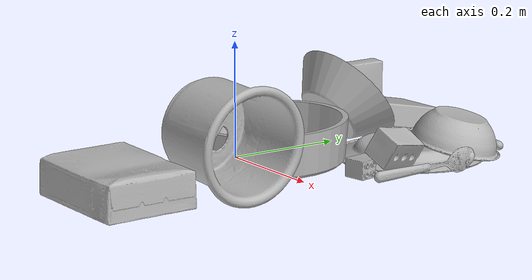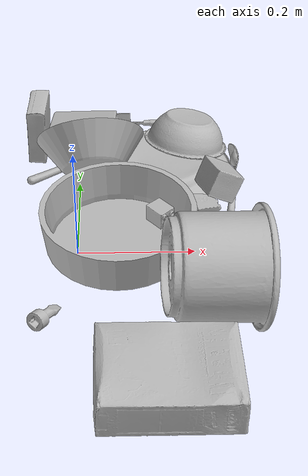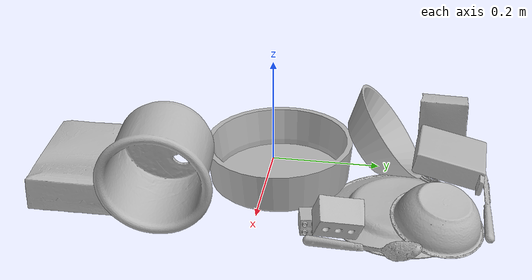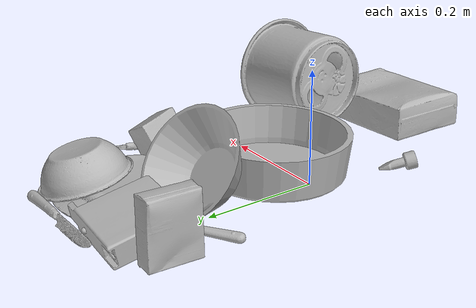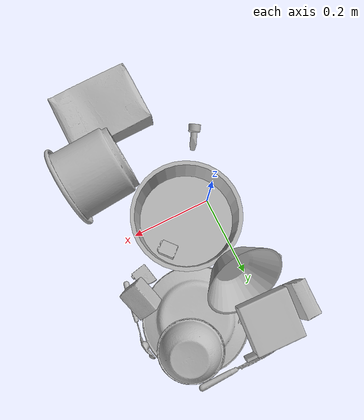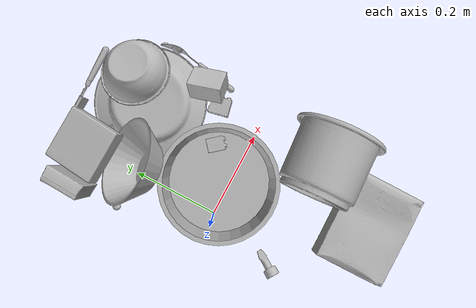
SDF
<sdf version="1.4">
  <world name="default">
    <light name="light1" type="point">
      <pose>0 0 1 0 0 0</pose>
      <diffuse>3 3 3 1</diffuse>
      <specular>3 3 3 1</specular>
    </light>
    <light name="light2" type="point">
      <pose>0 0.5 2 0 0 0</pose>
      <diffuse>1 1 1 1</diffuse>
      <specular>1 1 1 1</specular>
    </light>
    <light name="light3" type="point">
      <pose>0 0.5 2 0 0 0</pose>
      <diffuse>3 3 3 1</diffuse>
      <specular>3 3 3 1</specular>
    </light>
    <scene>
      <ambient>0.7 0.7 0.7</ambient>
    </scene>
    <model name="plate1">
      <link name="link_plate1">
        <collision name="default">
          <geometry>
            <mesh>
              <uri>model://pan_tefal/collision_meshes/collision.obj</uri>
              <scale>1.0 1.0 1.0</scale>
            </mesh>
          </geometry>
          <surface>
            <friction>
              <ode>
                <mu>0.5</mu>
                <mu2>0.5</mu2>
              </ode>
            </friction>
          <contact>
        <ode>
            <max_vel>0</max_vel>
            <min_depth>0.0001</min_depth>
            <kp>1e8</kp>
        </ode>
    </contact></surface>
        </collision>
        <visual name="default">
          <geometry>
            <mesh>
              <uri>model://pan_tefal/visual_meshes/visual.dae</uri>
              <scale>1.0 1.0 1.0</scale>
            </mesh>
          </geometry>
        </visual>
        <inertial>
          <mass>0.7050602436065674</mass>
          <pose>-0.00018002082651946694 3.279098018538207e-05 -0.008514933288097382 0.0008190340203057913 -0.0003301288692481796 -0.3318720847028622</pose>
          <inertia>
            <ixx>0.0048669963</ixx>
            <iyy>0.0048983735</iyy>
            <izz>0.008959204</izz>
            <ixy>0</ixy>
            <ixz>0</ixz>
            <iyz>0</iyz>
          </inertia>
        </inertial>
      </link>
      <pose>0.0700000450015068 0.022186564281582832 0.04150456190109253 0.002373753539338047 -0.02866517132073775 1.1102063727069282</pose>
    </model>
    <model name="plate2">
      <link name="link_plate2">
        <collision name="default">
          <geometry>
            <mesh>
              <uri>model://plate/collision_meshes/collision.obj</uri>
              <scale>1.0 1.0 1.0</scale>
            </mesh>
          </geometry>
          <surface>
            <friction>
              <ode>
                <mu>0.5</mu>
                <mu2>0.5</mu2>
              </ode>
            </friction>
          <contact>
        <ode>
            <max_vel>0</max_vel>
            <min_depth>0.0001</min_depth>
            <kp>1e8</kp>
        </ode>
    </contact></surface>
        </collision>
        <visual name="default">
          <geometry>
            <mesh>
              <uri>model://plate/visual_meshes/visual.dae</uri>
              <scale>1.0 1.0 1.0</scale>
            </mesh>
          </geometry>
        </visual>
        <inertial>
          <mass>0.2442774623632431</mass>
          <pose>-0.0006044568726792932 0.0002782584633678198 -0.0010561984963715076 0.0022187778178748897 -0.0032254919076997847 0.45261061169843664</pose>
          <inertia>
            <ixx>0.0011427345</ixx>
            <iyy>0.001131805</iyy>
            <izz>0.002235018</izz>
            <ixy>0</ixy>
            <ixz>0</ixz>
            <iyz>0</iyz>
          </inertia>
        </inertial>
      </link>
      <pose>0.15764230489730835 0.24875710904598236 0.013444468379020691 3.1412148881354875 -0.003317706827788829 3.1304350486531036</pose>
    </model>
    <model name="bowl1">
      <link name="link_bowl1">
        <collision name="default">
          <geometry>
            <mesh>
              <uri>model://bowl_a/collision_meshes/collision.obj</uri>
              <scale>1.0 1.0 1.0</scale>
            </mesh>
          </geometry>
          <surface>
            <friction>
              <ode>
                <mu>0.5</mu>
                <mu2>0.5</mu2>
              </ode>
            </friction>
          <contact>
        <ode>
            <max_vel>0</max_vel>
            <min_depth>0.0001</min_depth>
            <kp>1e8</kp>
        </ode>
    </contact></surface>
        </collision>
        <visual name="default">
          <geometry>
            <mesh>
              <uri>model://bowl_a/visual_meshes/visual.dae</uri>
              <scale>1.0 1.0 1.0</scale>
            </mesh>
          </geometry>
        </visual>
        <inertial>
          <mass>0.4025156497955322</mass>
          <pose>0.00027867371682077646 4.731032458948903e-05 -0.0013765298062935472 -0.00098054011869292 -0.0010938175729232503 -0.19123339485915475</pose>
          <inertia>
            <ixx>0.0011459808</ixx>
            <iyy>0.0011530165</iyy>
            <izz>0.0020381706</izz>
            <ixy>0</ixy>
            <ixz>0</ixz>
            <iyz>0</iyz>
          </inertia>
        </inertial>
      </link>
      <pose>0.023553917184472084 0.1975051909685135 0.07135315239429474 -0.4351230287822296 0.8444296334537583 1.1129605890189267</pose>
    </model>
    <model name="bowl2">
      <link name="link_bowl2">
        <collision name="default">
          <geometry>
            <mesh>
              <uri>model://bowl/collision_meshes/collision.obj</uri>
              <scale>1.0 1.0 1.0</scale>
            </mesh>
          </geometry>
          <surface>
            <friction>
              <ode>
                <mu>0.5</mu>
                <mu2>0.5</mu2>
              </ode>
            </friction>
          <contact>
        <ode>
            <max_vel>0</max_vel>
            <min_depth>0.0001</min_depth>
            <kp>1e8</kp>
        </ode>
    </contact></surface>
        </collision>
        <visual name="default">
          <geometry>
            <mesh>
              <uri>model://bowl/visual_meshes/visual.dae</uri>
              <scale>1.0 1.0 1.0</scale>
            </mesh>
          </geometry>
        </visual>
        <inertial>
          <mass>0.04694162309169769</mass>
          <pose>0.00020445318659767509 -0.001030211104080081 -0.0008042642730288208 -0.01576400215318024 0.014546874726031786 0.7140460761636136</pose>
          <inertia>
            <ixx>0.0001078286</ixx>
            <iyy>0.000105419305</iyy>
            <izz>0.00018140484</izz>
            <ixy>0</ixy>
            <ixz>0</ixz>
            <iyz>0</iyz>
          </inertia>
        </inertial>
      </link>
      <pose>0.20667056739330292 0.312991201877594 0.04512014240026474 -2.9831301443857874 0.1925902169791625 1.5465945495175615</pose>
    </model>
    <model name="silverware1">
      <link name="link_silverware1">
        <collision name="default">
          <geometry>
            <mesh>
              <uri>model://spoon/collision_meshes/collision.obj</uri>
              <scale>1.0 1.0 1.0</scale>
            </mesh>
          </geometry>
          <surface>
            <friction>
              <ode>
                <mu>0.5</mu>
                <mu2>0.5</mu2>
              </ode>
            </friction>
          <contact>
        <ode>
            <max_vel>0</max_vel>
            <min_depth>0.0001</min_depth>
            <kp>1e8</kp>
        </ode>
    </contact></surface>
        </collision>
        <visual name="default">
          <geometry>
            <mesh>
              <uri>model://spoon/visual_meshes/visual.dae</uri>
              <scale>1.0 1.0 1.0</scale>
            </mesh>
          </geometry>
        </visual>
        <inertial>
          <mass>0.03710600733757019</mass>
          <pose>-0.005526318680495024 -0.0016034168656915426 -0.0007271650829352438 0.03521602429168162 -0.03906583039209626 0.006150612964611125</pose>
          <inertia>
            <ixx>2.0638956e-06</ixx>
            <iyy>0.00014118708</iyy>
            <izz>0.00014220492</izz>
            <ixy>0</ixy>
            <ixz>0</ixz>
            <iyz>0</iyz>
          </inertia>
        </inertial>
      </link>
      <pose>0.28346970677375793 0.18870364129543304 0.014320767484605312 -1.52408150348281 -0.07640879022999426 1.4037722472331344</pose>
    </model>
    <model name="box1">
      <link name="link_box1">
        <collision name="default">
          <geometry>
            <mesh>
              <uri>model://cracker_box/collision_meshes/collision.obj</uri>
              <scale>1.0 1.0 1.0</scale>
            </mesh>
          </geometry>
          <surface>
            <friction>
              <ode>
                <mu>0.5</mu>
                <mu2>0.5</mu2>
              </ode>
            </friction>
          <contact>
        <ode>
            <max_vel>0</max_vel>
            <min_depth>0.0001</min_depth>
            <kp>1e8</kp>
        </ode>
    </contact></surface>
        </collision>
        <visual name="default">
          <geometry>
            <mesh>
              <uri>model://cracker_box/visual_meshes/visual.dae</uri>
              <scale>1.0 1.0 1.0</scale>
            </mesh>
          </geometry>
        </visual>
        <inertial>
          <mass>2.252173662185669</mass>
          <pose>0.0009464137838222086 0.0002543425071053207 -0.0017029535956680775 -0.000316207513865998 -0.011106489600465836 0.0025467954670329632</pose>
          <inertia>
            <ixx>0.0057285246</ixx>
            <iyy>0.00945892</iyy>
            <izz>0.013498746</izz>
            <ixy>0</ixy>
            <ixz>0</ixz>
            <iyz>0</iyz>
          </inertia>
        </inertial>
      </link>
      <pose>0.1381954401731491 -0.3160895109176636 0.036481816321611404 -0.011793285472759698 -0.007366511565111427 -3.1329583103969063</pose>
    </model>
    <model name="box2">
      <link name="link_box2">
        <collision name="default">
          <geometry>
            <mesh>
              <uri>model://pudding_box/collision_meshes/collision.obj</uri>
              <scale>1.0 1.0 1.0</scale>
            </mesh>
          </geometry>
          <surface>
            <friction>
              <ode>
                <mu>0.5</mu>
                <mu2>0.5</mu2>
              </ode>
            </friction>
          <contact>
        <ode>
            <max_vel>0</max_vel>
            <min_depth>0.0001</min_depth>
            <kp>1e8</kp>
        </ode>
    </contact></surface>
        </collision>
        <visual name="default">
          <geometry>
            <mesh>
              <uri>model://pudding_box/visual_meshes/visual.dae</uri>
              <scale>1.0 1.0 1.0</scale>
            </mesh>
          </geometry>
        </visual>
        <inertial>
          <mass>0.38795164227485657</mass>
          <pose>0.0004894821904599667 0.0008067885646596551 -0.0005188827635720372 0.005213102258195884 -0.006603798723254801 0.020079825158131615</pose>
          <inertia>
            <ixx>0.00043855933</ixx>
            <iyy>0.00029506587</iyy>
            <izz>0.0006476475</izz>
            <ixy>0</ixy>
            <ixz>0</ixz>
            <iyz>0</iyz>
          </inertia>
        </inertial>
      </link>
      <pose>-0.07973471283912659 0.3134753704071045 0.0563773512840271 1.5837755329716028 -0.008387485142868521 1.5340646373276843</pose>
    </model>
    <model name="cup1">
      <link name="link_cup1">
        <collision name="default">
          <geometry>
            <mesh>
              <uri>model://i_cups/collision_meshes/collision.obj</uri>
              <scale>2.0 2.0 2.0</scale>
            </mesh>
          </geometry>
          <surface>
            <friction>
              <ode>
                <mu>0.5</mu>
                <mu2>0.5</mu2>
              </ode>
            </friction>
          <contact>
        <ode>
            <max_vel>0</max_vel>
            <min_depth>0.0001</min_depth>
            <kp>1e8</kp>
        </ode>
    </contact></surface>
        </collision>
        <visual name="default">
          <geometry>
            <mesh>
              <uri>model://i_cups/visual_meshes/visual.dae</uri>
              <scale>2.0 2.0 2.0</scale>
            </mesh>
          </geometry>
        </visual>
        <inertial>
          <mass>0.8781275153160095</mass>
          <pose>0.00022480404004454613 0.0003359464171808213 -0.0017158013070002198 -0.028983801808433914 -0.03987279960401974 -0.34589629987983705</pose>
          <inertia>
            <ixx>0.004863122</ixx>
            <iyy>0.004905971</iyy>
            <izz>0.005435325</izz>
            <ixy>0</ixy>
            <ixz>0</ixz>
            <iyz>0</iyz>
          </inertia>
        </inertial>
      </link>
      <pose>0.21567927300930023 -0.15919721126556396 0.10314294695854187 1.725651877833859 1.1349519964727943 1.7650253074520619</pose>
    </model>
    <model name="silverware2">
      <link name="link_silverware2">
        <collision name="default">
          <geometry>
            <mesh>
              <uri>model://fork/collision_meshes/collision.obj</uri>
              <scale>1.0 1.0 1.0</scale>
            </mesh>
          </geometry>
          <surface>
            <friction>
              <ode>
                <mu>0.5</mu>
                <mu2>0.5</mu2>
              </ode>
            </friction>
          <contact>
        <ode>
            <max_vel>0</max_vel>
            <min_depth>0.0001</min_depth>
            <kp>1e8</kp>
        </ode>
    </contact></surface>
        </collision>
        <visual name="default">
          <geometry>
            <mesh>
              <uri>model://fork/visual_meshes/visual.dae</uri>
              <scale>1.0 1.0 1.0</scale>
            </mesh>
          </geometry>
        </visual>
        <inertial>
          <mass>0.027322283014655113</mass>
          <pose>-0.02957003377377987 0.0004658822435885668 0.0003218860656488687 -0.013551502868568713 -0.01097783467120204 0.01445389601768567</pose>
          <inertia>
            <ixx>9.578007e-07</ixx>
            <iyy>7.133063e-05</iyy>
            <izz>7.175903e-05</izz>
            <ixy>0</ixy>
            <ixz>0</ixz>
            <iyz>0</iyz>
          </inertia>
        </inertial>
      </link>
      <pose>-0.014892121776938438 0.25396469235420227 0.007657851092517376 -0.061427877134367086 0.0042636946048402674 0.5794724785909308</pose>
    </model>
    <model name="silverware3">
      <link name="link_silverware3">
        <collision name="default">
          <geometry>
            <mesh>
              <uri>model://knife/collision_meshes/collision.obj</uri>
              <scale>1.0 1.0 1.0</scale>
            </mesh>
          </geometry>
          <surface>
            <friction>
              <ode>
                <mu>0.5</mu>
                <mu2>0.5</mu2>
              </ode>
            </friction>
          <contact>
        <ode>
            <max_vel>0</max_vel>
            <min_depth>0.0001</min_depth>
            <kp>1e8</kp>
        </ode>
    </contact></surface>
        </collision>
        <visual name="default">
          <geometry>
            <mesh>
              <uri>model://knife/visual_meshes/visual.dae</uri>
              <scale>1.0 1.0 1.0</scale>
            </mesh>
          </geometry>
        </visual>
        <inertial>
          <mass>0.036400385200977325</mass>
          <pose>-0.02378525584936142 0.0015275126788765192 5.0620175898075104e-05 0.07305876248658423 0.017248417790611748 -0.007409819472147862</pose>
          <inertia>
            <ixx>1.0331904e-06</ixx>
            <iyy>0.00013984439</iyy>
            <izz>0.00014017712</izz>
            <ixy>0</ixy>
            <ixz>0</ixz>
            <iyz>0</iyz>
          </inertia>
        </inertial>
      </link>
      <pose>0.11658068001270294 0.3957090675830841 0.00841150339692831 0.9014605267297957 -0.010240865611192727 -3.1364900944010925</pose>
    </model>
    <model name="toy1">
      <link name="link_toy1">
        <collision name="default">
          <geometry>
            <mesh>
              <uri>model://d_lego_duplo/collision_meshes/collision.obj</uri>
              <scale>1.0 1.0 1.0</scale>
            </mesh>
          </geometry>
          <surface>
            <friction>
              <ode>
                <mu>0.5</mu>
                <mu2>0.5</mu2>
              </ode>
            </friction>
          <contact>
        <ode>
            <max_vel>0</max_vel>
            <min_depth>0.0001</min_depth>
            <kp>1e8</kp>
        </ode>
    </contact></surface>
        </collision>
        <visual name="default">
          <geometry>
            <mesh>
              <uri>model://d_lego_duplo/visual_meshes/visual.dae</uri>
              <scale>1.0 1.0 1.0</scale>
            </mesh>
          </geometry>
        </visual>
        <inertial>
          <mass>0.060466669499874115</mass>
          <pose>0.002830563113093376 0.00016366162162739784 0.0008589806384406984 0.08010949306805684 -0.3835523000845375 0.0010296676643477064</pose>
          <inertia>
            <ixx>1.1705457e-05</ixx>
            <iyy>1.6613216e-05</iyy>
            <izz>1.6021117e-05</izz>
            <ixy>0</ixy>
            <ixz>0</ixz>
            <iyz>0</iyz>
          </inertia>
        </inertial>
      </link>
      <pose>0.22604013979434967 0.10284063220024109 0.016425836831331253 -1.577310457578303 -0.010837261970052357 -1.365891190562302</pose>
    </model>
    <model name="toy2">
      <link name="link_toy2">
        <collision name="default">
          <geometry>
            <mesh>
              <uri>model://b_lego_duplo/collision_meshes/collision.obj</uri>
              <scale>1.0 1.0 1.0</scale>
            </mesh>
          </geometry>
          <surface>
            <friction>
              <ode>
                <mu>0.5</mu>
                <mu2>0.5</mu2>
              </ode>
            </friction>
          <contact>
        <ode>
            <max_vel>0</max_vel>
            <min_depth>0.0001</min_depth>
            <kp>1e8</kp>
        </ode>
    </contact></surface>
        </collision>
        <visual name="default">
          <geometry>
            <mesh>
              <uri>model://b_lego_duplo/visual_meshes/visual.dae</uri>
              <scale>1.0 1.0 1.0</scale>
            </mesh>
          </geometry>
        </visual>
        <inertial>
          <mass>0.030077241361141205</mass>
          <pose>-0.00011053079651901498 -9.15232340048533e-06 0.0019294286612421274 -0.037494862621914114 -0.026354003688684128 0.4518993950044185</pose>
          <inertia>
            <ixx>6.155532e-06</ixx>
            <iyy>6.196912e-06</iyy>
            <izz>5.4843786e-06</izz>
            <ixy>0</ixy>
            <ixz>0</ixz>
            <iyz>0</iyz>
          </inertia>
        </inertial>
      </link>
      <pose>0.1444050818681717 0.06829328089952469 0.028994156047701836 1.9852856193837838 1.5348927857699173 1.1099363041317152</pose>
    </model>
    <model name="toy3">
      <link name="link_toy3">
        <collision name="default">
          <geometry>
            <mesh>
              <uri>model://nine_hole_peg_test/collision_meshes/collision.obj</uri>
              <scale>1.0 1.0 1.0</scale>
            </mesh>
          </geometry>
          <surface>
            <friction>
              <ode>
                <mu>0.5</mu>
                <mu2>0.5</mu2>
              </ode>
            </friction>
          <contact>
        <ode>
            <max_vel>0</max_vel>
            <min_depth>0.0001</min_depth>
            <kp>1e8</kp>
        </ode>
    </contact></surface>
        </collision>
        <visual name="default">
          <geometry>
            <mesh>
              <uri>model://nine_hole_peg_test/visual_meshes/visual.dae</uri>
              <scale>1.0 1.0 1.0</scale>
            </mesh>
          </geometry>
        </visual>
        <inertial>
          <mass>0.9411391019821167</mass>
          <pose>-0.0046173869632184505 -0.009647615253925323 2.646069333422929e-05 -0.0014666795036135398 0.0007194176186147546 -0.6342417663820423</pose>
          <inertia>
            <ixx>0.0014716258</ixx>
            <iyy>0.0013740414</iyy>
            <izz>0.0025787223</izz>
            <ixy>0</ixy>
            <ixz>0</ixz>
            <iyz>0</iyz>
          </inertia>
        </inertial>
      </link>
      <pose>0.014829132705926895 0.33351457118988037 0.034518808126449585 3.0925978131068836 0.19991731047154668 1.5035652938912882</pose>
    </model>
    <model name="toy4">
      <link name="link_toy4">
        <collision name="default">
          <geometry>
            <mesh>
              <uri>model://foam_brick/collision_meshes/collision.obj</uri>
              <scale>1.0 1.0 1.0</scale>
            </mesh>
          </geometry>
          <surface>
            <friction>
              <ode>
                <mu>0.5</mu>
                <mu2>0.5</mu2>
              </ode>
            </friction>
          <contact>
        <ode>
            <max_vel>0</max_vel>
            <min_depth>0.0001</min_depth>
            <kp>1e8</kp>
        </ode>
    </contact></surface>
        </collision>
        <visual name="default">
          <geometry>
            <mesh>
              <uri>model://foam_brick/visual_meshes/visual.dae</uri>
              <scale>1.0 1.0 1.0</scale>
            </mesh>
          </geometry>
        </visual>
        <inertial>
          <mass>0.1527709662914276</mass>
          <pose>-0.00025224717683158815 0.0003458428254816681 -0.00025321016437374055 -0.29402015796081304 0.017274438268763303 -0.0007449889855682301</pose>
          <inertia>
            <ixx>6.673321e-05</ixx>
            <iyy>0.00010654301</iyy>
            <izz>0.00010789704</izz>
            <ixy>0</ixy>
            <ixz>0</ixz>
            <iyz>0</iyz>
          </inertia>
        </inertial>
      </link>
      <pose>0.2511402368545532 0.14591272175312042 0.04650222510099411 2.0539319072540976 0.19221784010490808 1.8421085982534786</pose>
    </model>
    <model name="toy5">
      <link name="link_toy5">
        <collision name="default">
          <geometry>
            <mesh>
              <uri>model://e_toy_airplane/collision_meshes/collision.obj</uri>
              <scale>1.0 1.0 1.0</scale>
            </mesh>
          </geometry>
          <surface>
            <friction>
              <ode>
                <mu>0.5</mu>
                <mu2>0.5</mu2>
              </ode>
            </friction>
          <contact>
        <ode>
            <max_vel>0</max_vel>
            <min_depth>0.0001</min_depth>
            <kp>1e8</kp>
        </ode>
    </contact></surface>
        </collision>
        <visual name="default">
          <geometry>
            <mesh>
              <uri>model://e_toy_airplane/visual_meshes/visual.dae</uri>
              <scale>1.0 1.0 1.0</scale>
            </mesh>
          </geometry>
        </visual>
        <inertial>
          <mass>0.01976589486002922</mass>
          <pose>0.00011740453192032874 -2.2483010980067775e-05 -0.011187207885086536 0.005518504435964777 0.009228288570086122 0.15041432989491213</pose>
          <inertia>
            <ixx>6.0327766e-06</ixx>
            <iyy>5.971064e-06</iyy>
            <izz>1.813087e-06</izz>
            <ixy>0</ixy>
            <ixz>0</ixz>
            <iyz>0</iyz>
          </inertia>
        </inertial>
      </link>
      <pose>-0.04385828226804733 -0.15923596918582916 0.010869788005948067 3.0036625764043308 1.310302443336589 -2.273571788392496</pose>
    </model>
  <physics type="ode">
      <max_contacts>50</max_contacts>
      <ode>
        <solver>
          <type>quick</type>
          <iters>75</iters>
        </solver>
        <constraints>
          <contact_max_correcting_vel>0</contact_max_correcting_vel>
          <contact_surface_layer>0</contact_surface_layer>
        </constraints>
      </ode>
    </physics></world>
</sdf>
